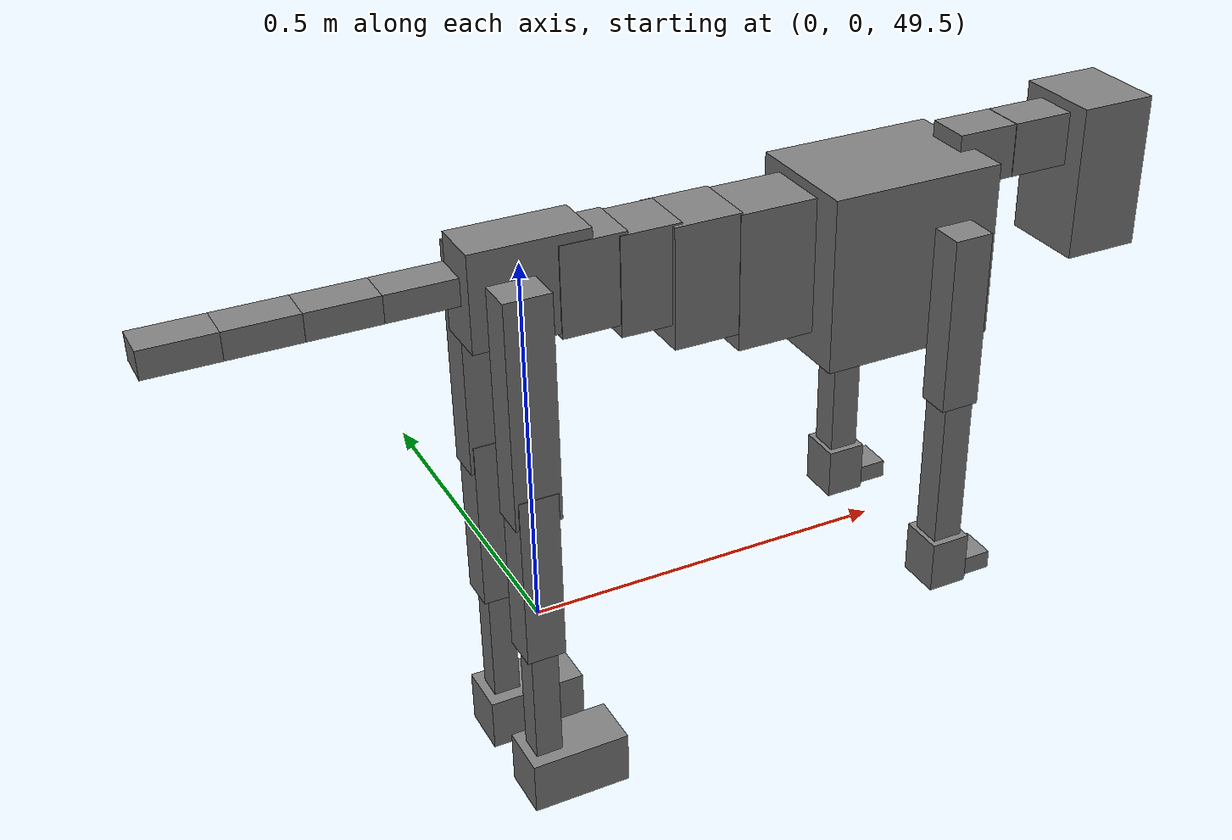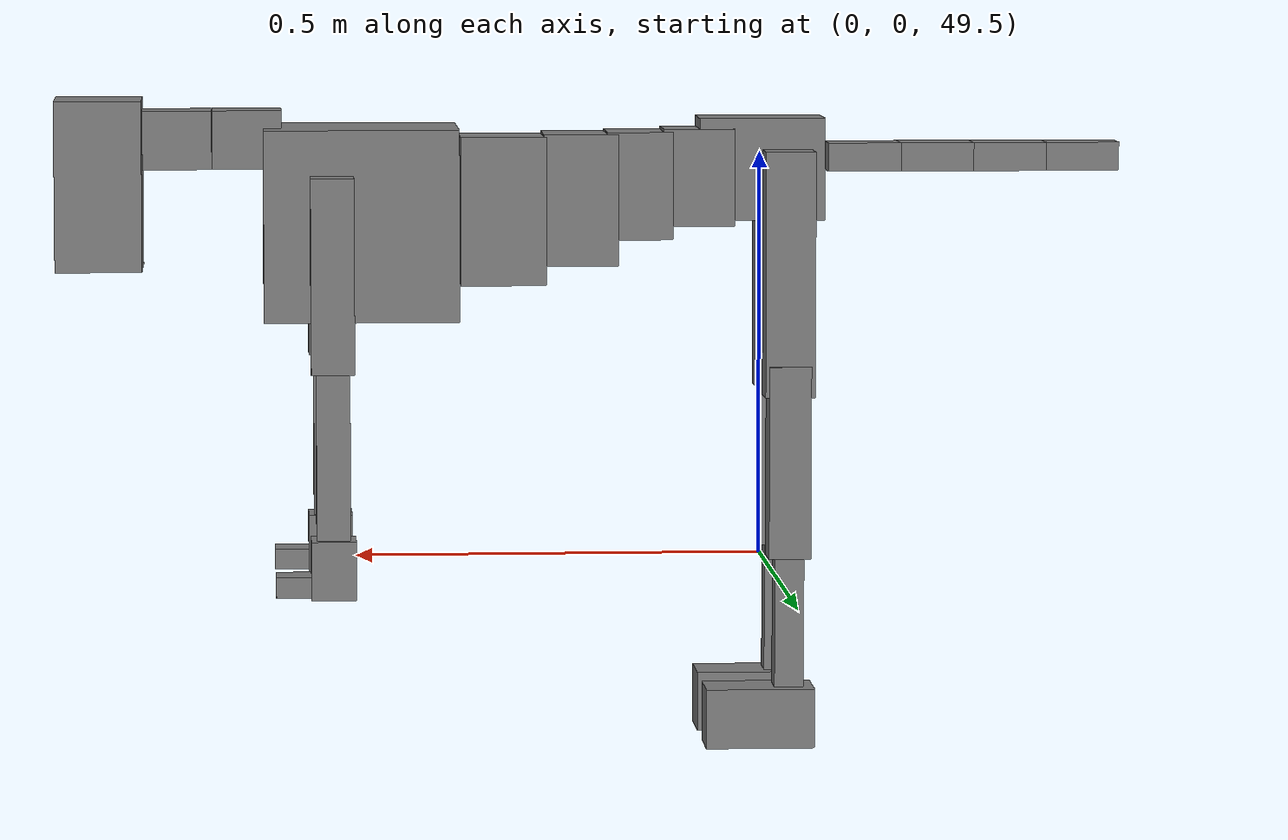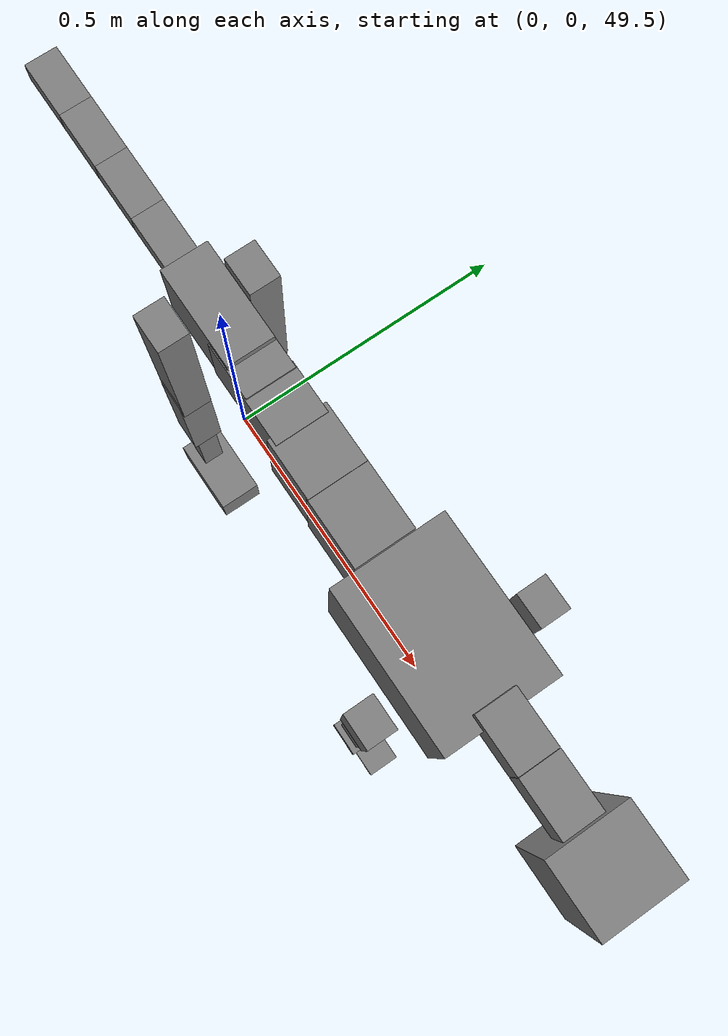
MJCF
<mujoco model="dog">

    <default>
        <joint armature="0.02" stiffness="1" damping="0.2" limited="true"/>
        <geom condim="3" friction="1 0.05 0.05" margin="0.01"/>
        <motor ctrllimited="true" ctrlrange="-1.0 1.0" forcelimited="true" gear="50"/>
    </default>

    <compiler inertiafromgeom="true" angle="radian"/>

    <option timestep="0.016" iterations="50" tolerance="1e-10" solver="Newton" jacobian="dense" cone="pyramidal"/>

    <size nconmax="20000" njmax="60000" nstack="5000000"/>
    <visual>
        <map force="0.1" zfar="30"/>
        <rgba haze="0.15 0.25 0.35 1"/>
        <quality shadowsize="2048"/>
        <global offwidth="800" offheight="800"/>
    </visual>

    <asset>
        <texture type="skybox" builtin="gradient" rgb1="0.3 0.5 0.7" rgb2="0 0 0" width="512" height="512"/>
        <texture name="texplane" type="2d" builtin="checker" rgb1=".2 .3 .4" rgb2=".1 0.15 0.2" width="512" height="512"
                 mark="cross" markrgb=".8 .8 .8"/>
        <texture name="texgeom" type="cube" builtin="flat" mark="cross" width="127" height="1278" rgb1="0.8 0.6 0.4"
                 rgb2="0.8 0.6 0.4" markrgb="1 1 1" random="0.01"/>

        <material name="matplane" reflectance="0.3" texture="texplane" texrepeat="1 1" texuniform="true"/>
        <material name="matgeom" texture="texgeom" texuniform="true" rgba="0.8 0.6 .4 1"/>
    </asset>

    <worldbody>
        <geom name="floor" pos="0 0 0" size="0 0 .25" type="plane" material="matplane" condim="3"/>

        <light directional="false" diffuse=".2 .2 .2" specular="0 0 0" pos="0 0 5" dir="0 0 -1" castshadow="false"/>
        <light mode="targetbodycom" target="torso" directional="false" diffuse=".8 .8 .8" specular="0.3 0.3 0.3"
               pos="0 0 4.0" dir="0 0 -1"/>

        <body name="root" pos="0 0 50">
            <freejoint name="root_1"/>
            <geom type="box" pos="0 0 -0.02" size="0.0774  0.0358  0.063" density="2030"/>

            <body name="spine1" pos="0.054 0 0">
                <joint name="spine1_y" axis="0 1 0" range="0 0.7" limited="true"/>
                <geom type="box" pos="0.02375 0 -0.03" size="0.04375  0.0375  0.05985" density="2030"/>

                <body name="spine2" pos="0.0612 0 0">
                    <joint name="spine2_y" axis="0 1 0" range="-0.15 0.15" limited="true"/>
                    <geom type="box" pos="0.03555  0  -0.04" size="0.04055  0.039  0.06615" density="2030"/>

                    <body name="spine3" pos="0.0730 0 0">
                        <joint name="spine3_y" axis="0 1 0" range="-0.15 0.15" limited="true"/>
                        <geom type="box" pos="0.03555  0  -0.057" size="0.04555  0.0445  0.081" density="2030"/>

                        <body name="spine4" pos="0.0780 0 0">
                            <joint name="spine4_y" axis="0 1 0" range="-0.15 0.15" limited="true"/>
                            <geom type="box" pos="0.05265  0  -0.07" size="0.05265  0.045  0.09135" density="2030"/>

                            <body name="torso" pos="0.1082 0 0">
                                <joint name="torso_y" axis="0 1 0" range="-0.15 0.15" limited="true"/>
                                <geom type="box" pos="0.11925  0  -0.085" size="0.11925  0.085  0.11745"
                                      density="2030"/>

                                <body name="neck1" pos="0.2160  0   0.0180">
                                    <joint name="neck1_y" axis="0 1 0" range="-1.2  -1" limited="true"/>
                                    <geom type="box" pos="0.0423  0  0" size="0.0423  0.03  0.036" density="2325"/>

                                    <body name="neck2" pos="0.0853  0  0">
                                        <joint name="neck2_y" axis="0 1 0" range="0.1  0" limited="true"/>
                                        <geom type="box" pos="0.0423  0  0" size="0.0423  0.03  0.036" density="2325"/>

                                        <body name="head" pos="0.0853  0  0">
                                            <joint name="head_y" axis="0 1 0" range="-0.3  -0.2" limited="true"/>
                                            <geom type="box" pos="0.0531  0  -0.055" size="0.0531  0.06  0.1044"
                                                  density="4030"/>

                                        </body>
                                    </body>
                                </body>

                                <body name="front_shoulder" pos="0.156  0   -0.0480">
                                    <joint name="front_shoulder_y" axis="0 1 0" range="-1 1.5" limited="true"/>
                                    <geom type="box" pos="0 0.13 -0.0925" size="0.0263  0.0225  0.1191" density="1158"/>
                                    <geom type="box" pos="0 -0.13 -0.0925" size="0.0263  0.0225  0.1191"
                                          density="1158"/>

                                    <body name="front_elbow" pos="0  0  -0.1849">
                                        <joint name="front_elbow_y" axis="0 1 0" range="-2 0" limited="true"/>
                                        <geom type="box" pos="0 0.13 -0.1209" size="0.0205  0.0210  0.1209"
                                              density="1081"/>
                                        <geom type="box" pos="0 -0.13 -0.1209" size="0.0205  0.0210  0.1209"
                                              density="1081"/>

                                        <body name="front_wrist" pos="0  0  -0.2419">
                                            <joint name="front_wrist_y" axis="0 1 0" range="-0.2 0" limited="true"/>
                                            <geom type="box" pos="0 0.13 -0.0227" size="0.0273  0.0304  0.0358"
                                                  density="1664"/>
                                            <geom type="box" pos="0 -0.13 -0.0227" size="0.0273  0.0304  0.0358"
                                                  density="1664"/>

                                            <body name="front_finger_end" pos="0  0  -0.0453">
                                                <joint name="front_finger_y" axis="0 1 0" range="-0.4 1"
                                                       limited="true"/>
                                                <geom type="box" pos="0.0246  0.13  0.0022"
                                                      size="0.0452  0.0246  0.0128" density="1515"/>
                                                <geom type="box" pos="0.0246  -0.13  0.0022"
                                                      size="0.0452  0.0246  0.0128" density="1515"/>

                                            </body>

                                        </body>
                                    </body>
                                </body>

                            </body>
                        </body>
                    </body>
                </body>
            </body>

            <body name="back_hip" pos="-0.03 0 -0.018">
                <joint name="back_hip_y" axis="0 1 0" range="-1.5 0.3" limited="true"/>
                <geom type="box" pos="0 0.07 -0.1282" size="0.0305  0.0240  0.1510" density="1154"/>
                <geom type="box" pos="0 -0.07 -0.1282" size="0.0305  0.0240  0.1510" density="1154"/>

                <body name="back_knee" pos="0  0  -0.2564">
                    <joint name="back_knee_y" axis="0 1 0" range="0 2.8" limited="true"/>
                    <geom type="box" pos="0 0.07 -0.1031" size="0.0258  0.0254  0.1187" density="1227"/>
                    <geom type="box" pos="0 -0.07 -0.1031" size="0.0258  0.0254  0.1187" density="1227"/>

                    <body name="back_ankle" pos="0  0  -0.2062">
                        <joint name="back_ankle_y" axis="0 1 0" range="-2.2 0" limited="true"/>
                        <geom type="box" pos="0 0.07 -0.0950" size="0.0180  0.0180  0.1063" density="1284"/>
                        <geom type="box" pos="0 -0.07 -0.0950" size="0.0180  0.0180  0.1063" density="1284"/>

                        <body name="back_toe_end" pos="0  0  -0.1901">
                            <joint name="back_toe_y" axis="0 1 0" range="-0.4 1" limited="true"/>
                            <geom type="box" pos="0.0365  0.07  -0.0217" size="0.0669  0.0365  0.0367" density="1515"/>
                            <geom type="box" pos="0.0365  -0.07  -0.0217" size="0.0669  0.0365  0.0367" density="1515"/>

                        </body>
                    </body>
                </body>
            </body>

            <body name="tail1" pos="-0.074 0 -0.006">
                <joint name="tail1_y" axis="0 1 0" range="-0.2 0.2" limited="true"/>
                <geom type="box" pos="-0.0536  0  0" size="0.045  0.025  0.0175" density="1587"/>

                <body name="tail2" pos="-0.09 0 0">
                    <joint name="tail2_y" axis="0 1 0" range="-0.2 0.2" limited="true"/>
                    <geom type="box" pos="-0.0536  0  0" size="0.045  0.025  0.0175" density="1587"/>

                    <body name="tail3" pos="-0.09 0 0">
                        <joint name="tail3_y" axis="0 1 0" range="-0.2 0.2" limited="true"/>
                        <geom type="box" pos="-0.0536  0  0" size="0.045  0.025  0.0175" density="1587"/>

                        <body name="tail4" pos="-0.09 0 0">
                            <joint name="tail4_y" axis="0 1 0" range="-0.2 0.2" limited="true"/>
                            <geom type="box" pos="-0.0536  0  0" size="0.045  0.025  0.0175" density="1587"/>

                        </body>
                    </body>
                </body>
            </body>
        </body>
    </worldbody>

    <actuator>
        <motor joint="spine1_y" forcerange="-150 150     "/>
        <motor joint="spine2_y" forcerange="-150 150     "/>
        <motor joint="spine3_y" forcerange="-150 150     "/>
        <motor joint="spine4_y" forcerange="-150 150     "/>
        <motor joint="torso_y" forcerange="-150 150     "/>
        <motor joint="neck1_y" forcerange="-100 100       "/>
        <motor joint="neck2_y" forcerange="-100 100       "/>
        <motor joint="head_y" forcerange="-150 150       "/>
        <motor joint="front_shoulder_y" forcerange="-143.29 106.65"/>
        <motor joint="front_elbow_y" forcerange="-123.53 129.15"/>
        <motor joint="front_wrist_y" forcerange="-96.46 146.64"/>
        <motor joint="front_finger_y" forcerange="-46.20 45.23"/>
        <motor joint="back_hip_y" forcerange="-288.12 231.28"/>
        <motor joint="back_knee_y" forcerange="-320.08 249.57"/>
        <motor joint="back_angle_y" forcerange="-52.57 135.06"/>
        <motor joint="back_toe_y" forcerange="-100.28 111.66"/>
        <motor joint="tail1_y" forcerange="-50 50     "/>
        <motor joint="tail2_y" forcerange="-50 50     "/>
        <motor joint="tail3_y" forcerange="-50 50     "/>
        <motor joint="tail4_y" forcerange="-50 50     "/>
    </actuator>
</mujoco>
